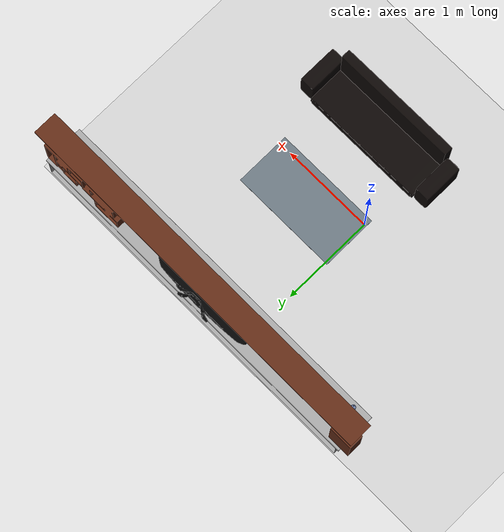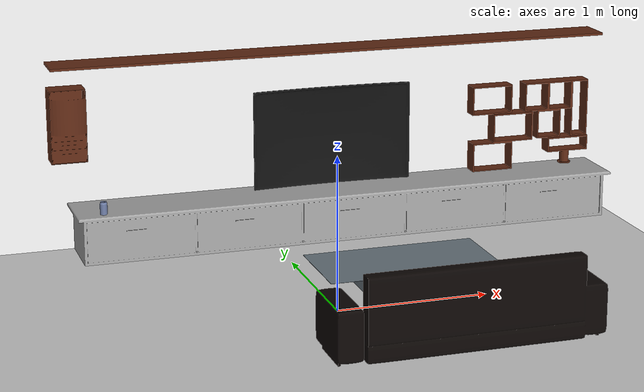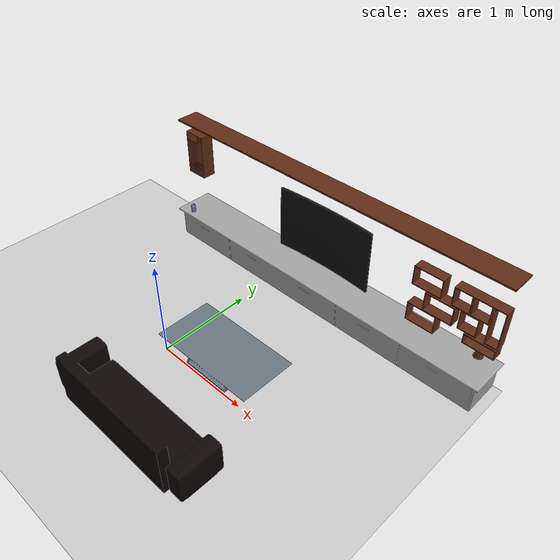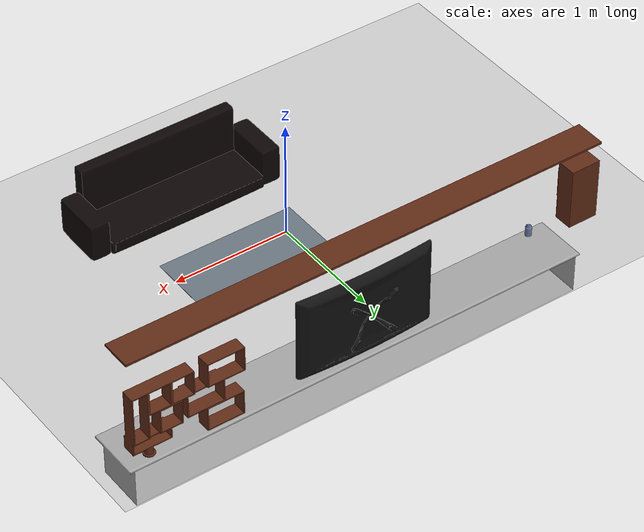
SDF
<sdf version="1.6">
 <world name="room">
  <include><uri>model://sun</uri></include>
  <include><uri>model://lc_floor</uri></include>
  <include><uri>model://lc_bookshelf</uri><pose>2.05631 1.69254 0.680848 0 -0 0</pose></include>
  <include><uri>model://lc_cabinet</uri><pose>-1.38001 1.70508 0.822405 0 -0 0</pose></include>
  <include><uri>model://lc_can</uri><pose>-1.19744 1.39146 0.38114 0.010228 -0.003607 0.004857</pose></include>
  <include><uri>model://lc_shelf</uri><pose>0.50964 1.65593 1.01491 0 -0 0</pose></include>
  <include><uri>model://lc_sofa</uri><pose>0.542039 -0.822537 0.200018 0 -0 0</pose></include>
  <include><uri>model://lc_table</uri><pose>0.530494 0.266919 -0.197504 0 -0 0</pose></include>
  <include><uri>model://lc_tv</uri><pose>0.500186 1.70152 0.676686 0 -0 0</pose></include>
  <include><uri>model://lc_tv_stand</uri><pose>0.570066 1.54442 0.167182 0 -0 0</pose></include>
 </world>
</sdf>

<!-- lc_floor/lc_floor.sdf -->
<sdf version="1.5">
  <model name="floor">
    <static>true</static>
    <link name="floor_link">
      <collision name="floor_collision">
        <geometry>
          <plane>
            <normal>0 0 1</normal>
            <size>5.16 3.55</size>
          </plane>
        </geometry>
        <surface>
          <friction>
            <ode>
              <mu>100</mu>
              <mu2>50</mu2>
            </ode>
          </friction>
        </surface>
      </collision>
      <visual name="floor_visual">
        <cast_shadows>false</cast_shadows>
        <geometry>
	  <plane>
            <normal>0 0 1</normal>
            <size>5.16 3.55</size>
          </plane>
        </geometry>
	      <material>
          <script>
            <uri>model://lc_floor/materials/scripts</uri>
            <uri>model://lc_floor/materials/textures</uri>
            <name>floorMat/Diffuse</name>
          </script>
        </material>
      </visual>
    </link>
  </model>
</sdf>

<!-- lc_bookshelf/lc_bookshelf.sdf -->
<sdf version="1.5">
  <model name="bookshelf">
    <static>true</static>
    <link name="bookshelf_link">
        <pose>0 0 0 0 0 0</pose>
        <collision name="bs_collision">
         <geometry>
	          <box>
                <size>0.91 0.11 0.63</size>
            </box>
        </geometry>
        <surface>
          <friction>
            <ode>
              <mu>100</mu>
              <mu2>50</mu2>
            </ode>
          </friction>
        </surface>
      </collision>

      <visual name="bs_mesh">
        <cast_shadows>true</cast_shadows>
        <geometry>
            <mesh>
                <uri>model://lc_bookshelf/meshes/bookshelf.dae</uri>
            </mesh>
        </geometry>
	    <material>
          <script>
            <uri>model://lc_bookshelf/materials/scripts</uri>
            <uri>model://lc_bookshelf/materials/textures</uri>
            <name>bookshelfMat/Diffuse</name>
          </script>
        </material>
      </visual>
    </link>
  </model>
</sdf>

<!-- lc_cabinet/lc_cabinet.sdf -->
<sdf version="1.5">
  <model name="cabinet">
    <static>true</static>
    <link name="cabinet_link">
        <pose>0 0 0 0 0 0</pose>
        <collision name="cabinet_collision">
            <pose>0 0 0.1 0 0 0</pose>
         <geometry>
	        <box>
                <size>0.247 0.199 0.505</size>
            </box>
        </geometry>
        <surface>
          <friction>
            <ode>
              <mu>30</mu>
              <mu2>30</mu2>
            </ode>
          </friction>
        </surface>
      </collision>

      <visual name="cabinet_mesh">
        <cast_shadows>true</cast_shadows>
        <geometry>
            <mesh>
                <uri>model://lc_cabinet/meshes/cabinet.dae</uri>
            </mesh>
        </geometry>
	    <material>
          <script>
            <uri>model://lc_cabinet/materials/scripts</uri>
            <uri>model://lc_cabinet/materials/textures</uri>
            <name>cabinetMat/Diffuse</name>
          </script>
        </material>
      </visual>
    </link>
  </model>
</sdf>

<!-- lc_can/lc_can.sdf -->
<sdf version="1.5">
  <model name="can">
    <static>false</static>
    <link name="can_link">
        <pose>0 0 0 0 0 0</pose>
        <collision name="can_collision">
         <geometry>
	            <box>
                    <size>.05 .05 .091</size>
                </box>
            </geometry>
          <surface>
            <friction>
              <ode>
                <mu>5</mu>
                <mu2>5</mu2>
              </ode>
            </friction>
          </surface>
        </collision>

      <visual name="can_mesh">
        <cast_shadows>false</cast_shadows>
        <geometry>
            <mesh>
                <uri>model://lc_can/meshes/can.dae</uri>
            </mesh>
        </geometry>
	    <material>
          <script>
            <uri>model://lc_can/materials/scripts</uri>
            <uri>model://lc_can/materials/textures</uri>
            <name>canMat/Diffuse</name>
          </script>
        </material>
      </visual>
    </link>
  </model>
</sdf>

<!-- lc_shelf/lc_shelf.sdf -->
<sdf version="1.5">
  <model name="shelf">
    <static>true</static>
    <link name="shelf_link">
        <pose>0 0 0.3 0 0 0</pose>
        <collision name="shelf_collision">
         <geometry>
	          <box>
                <size>4.01 0.253 0.0175</size>
            </box>
        </geometry>
        <surface>
          <friction>
            <ode>
              <mu>100</mu>
              <mu2>50</mu2>
            </ode>
          </friction>
        </surface>
      </collision>

      <visual name="shelf_mesh">
        <cast_shadows>true</cast_shadows>
        <geometry>
            <mesh>
                <uri>model://lc_shelf/meshes/shelf.dae</uri>
            </mesh>
        </geometry>
	    <material>
          <script>
            <uri>model://lc_shelf/materials/scripts</uri>
            <uri>model://lc_shelf/materials/textures</uri>
            <name>shelfMat/Diffuse</name>
          </script>
        </material>
      </visual>
    </link>
  </model>
</sdf>

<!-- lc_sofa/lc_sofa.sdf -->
<sdf version="1.5">
  <model name="lc_sofa">
    <static>true</static>
    <link name="sofa_link">
        <collision name="sofa_collision">
         <geometry>
	          <box>
                <size>1.70 0.51 0.55</size>
            </box>
        </geometry>
      </collision>

      <visual name="sofa_mesh">
        <cast_shadows>true</cast_shadows>
        <geometry>
            <mesh>
                <uri>model://lc_sofa/meshes/sofa.dae</uri>
            </mesh>
        </geometry>
	      <material>
          <script>
            <uri>model://lc_sofa/materials/scripts</uri>
            <uri>model://lc_sofa/materials/textures</uri>
            <name>sofaMat/Diffuse</name>
          </script>
        </material>
      </visual>
    </link>
  </model>
</sdf>

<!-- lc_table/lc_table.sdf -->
<sdf version="1.5">
  <model name="table">
    <static>true</static>
    <link name="table_link">
        <pose>0 0 0.3 0 0 0</pose>
        <collision name="ctable_collision">
         <geometry>
	        <box>
                 <size>1.16 0.60 0.19</size>
            </box>
        </geometry>
        <surface>
          <friction>
            <ode>
              <mu>10</mu>
                <mu2>10</mu2>
               <slip1>0.2</slip1>
                <slip2>0.2</slip2>
            </ode>
          </friction>
        </surface>
      </collision>

      <visual name="table_mesh">
        <cast_shadows>true</cast_shadows>
        <geometry>
            <mesh>
                <uri>model://lc_table/meshes/table.dae</uri>
            </mesh>
        </geometry>
	    <material>
          <script>
            <uri>model://lc_table/materials/scripts</uri>
            <uri>model://lc_table/materials/textures</uri>
            <name>tableMat/Diffuse</name>
          </script>
        </material>
      </visual>
    </link>
  </model>
</sdf>

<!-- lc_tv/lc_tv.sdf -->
<sdf version="1.5">
  <model name="lc_tv">
    <static>true</static>
    <link name="tv_link">
        <pose>0 0 0 0 0 0</pose>
        <collision name="tv_collision">
         <geometry>
	        <box>
                <size>1.15 0.16 0.72</size>
            </box>
        </geometry>
        <surface>
          <friction>
            <ode>
              <mu>100</mu>
              <mu2>50</mu2>
            </ode>
          </friction>
        </surface>
      </collision>

      <visual name="tv_mesh">
        <cast_shadows>true</cast_shadows>
        <geometry>
            <mesh>
                <uri>model://lc_tv/meshes/tv.dae</uri>
            </mesh>
        </geometry>
	    <material>
        </material>
      </visual>
    </link>
  </model>
</sdf>

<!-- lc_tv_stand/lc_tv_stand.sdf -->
<sdf version="1.5">
  <model name="tv-stand">
    <static>true</static>
    <link name="tv_stand_link">
        <pose>0 0 0 0 0 0</pose>
        <collision name="tv_stand_collision">
         <geometry>
	          <box>
                <size>3.9 .44 .34</size>
            </box>
        </geometry>
        <surface>
          <friction>
            <ode>
              <mu>100</mu>
              <mu2>50</mu2>
            </ode>
          </friction>
        </surface>
      </collision>

      <visual name="tv_stand_mesh">
        <cast_shadows>true</cast_shadows>
        <geometry>
            <mesh>
                <uri>model://lc_tv_stand/meshes/tv_stand.dae</uri>
            </mesh>
        </geometry>
	    <material>
          <script>
            <uri>model://lc_tv_stand/materials/scripts</uri>
            <uri>model://lc_tv_stand/materials/textures</uri>
            <name>tvStandMat/Diffuse</name>
          </script>
        </material>
      </visual>
    </link>
  </model>
</sdf>
